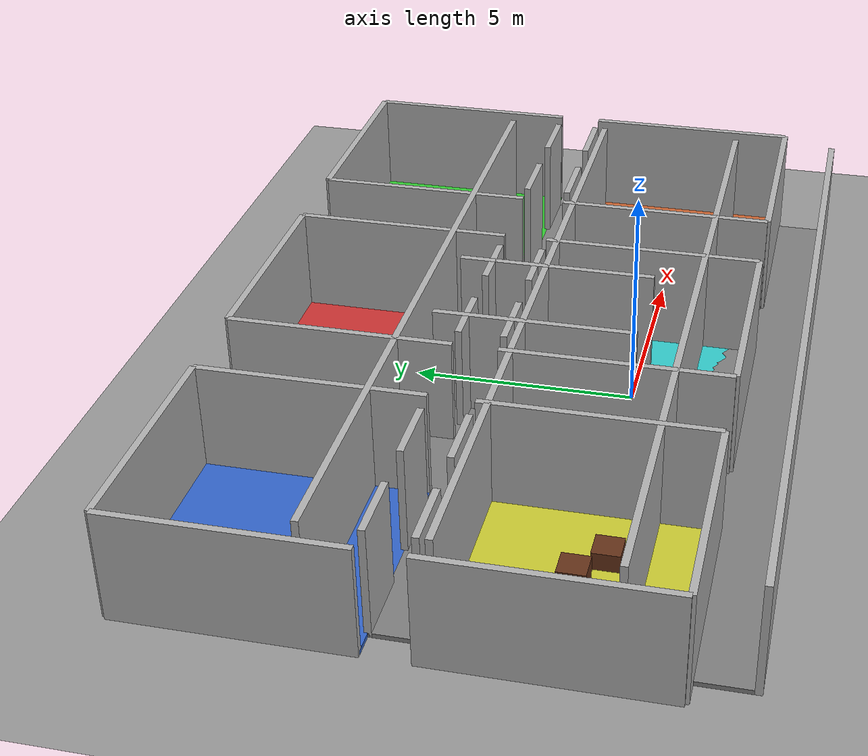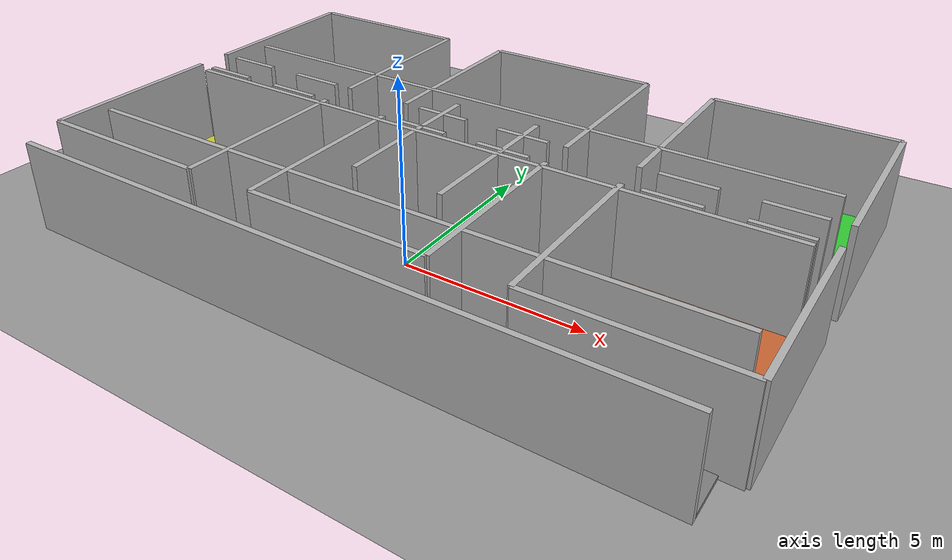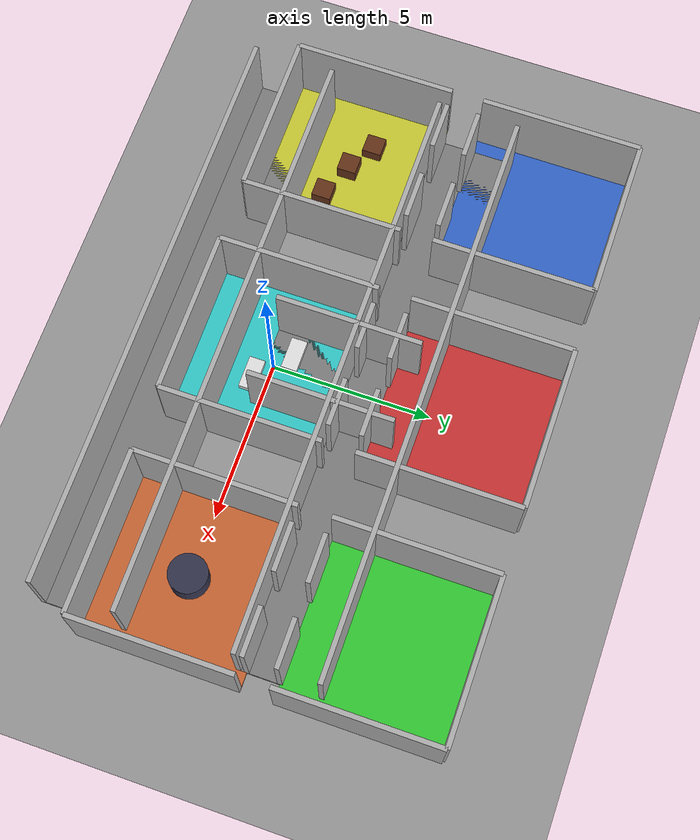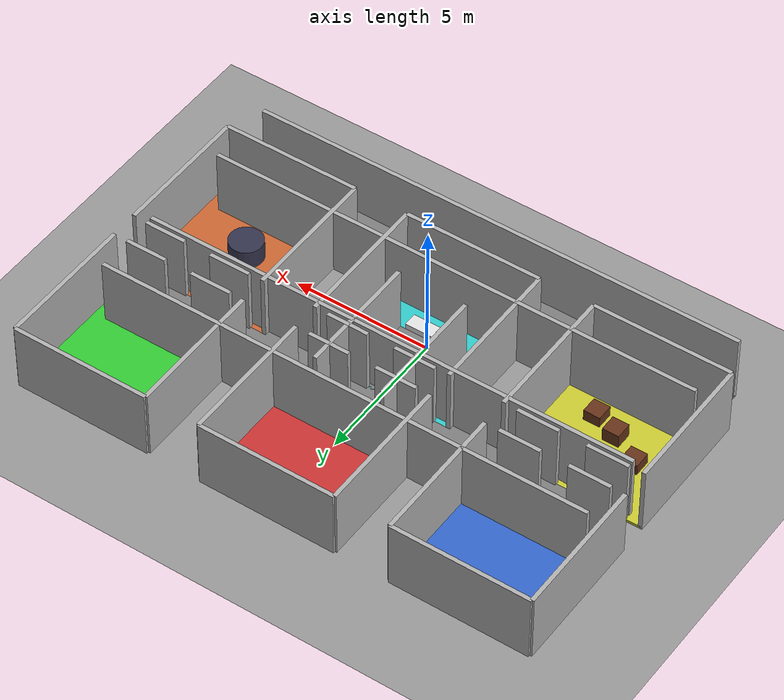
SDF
<?xml version="1.0" ?>
<sdf version="1.7">
  <world name="spacecraft_clean">

    <!-- ====== BRIGHT LIGHTING ====== -->

    <light name="sun" type="directional">
      <pose>0 0 10 0 0 0</pose>
      <direction>0 -0.3 -1</direction>
      <diffuse>1 1 1 1</diffuse>
      <specular>0.8 0.8 0.8 1</specular>
      <cast_shadows>false</cast_shadows>
    </light>

    <light name="overhead" type="point">
      <pose>0 3 8 0 0 0</pose>
      <diffuse>1 1 1 1</diffuse>
      <specular>0.5 0.5 0.5 1</specular>
      <attenuation>
        <range>30</range>
        <constant>0.2</constant>
        <linear>0.01</linear>
        <quadratic>0.001</quadratic>
      </attenuation>
    </light>

    <light name="top_light" type="point">
      <pose>0 0 12 0 0 0</pose>
      <diffuse>1 1 1 1</diffuse>
      <specular>0.5 0.5 0.5 1</specular>
      <attenuation>
        <range>25</range>
        <constant>0.1</constant>
        <linear>0.01</linear>
        <quadratic>0.001</quadratic>
      </attenuation>
    </light>

    <!-- ====== GRAY GROUND ====== -->

    <model name="ground_plane">
      <static>true</static>
      <link name="link">
        <visual name="visual">
          <geometry>
            <plane><normal>0 0 1</normal><size>30 30</size></plane>
          </geometry>
          <material>
            <ambient>0.5 0.5 0.5 1</ambient>
            <diffuse>0.6 0.6 0.6 1</diffuse>
          </material>
        </visual>
        <collision name="collision">
          <geometry>
            <plane><normal>0 0 1</normal><size>30 30</size></plane>
          </geometry>
        </collision>
      </link>
    </model>

    <!-- ====== ROOMS (NO ROOFS) ====== -->

    <!-- COMMAND MODULE (Top-Left - Blue) -->
    <model name="command_module">
      <static>true</static>
      <pose>-7 6 0 0 0 0</pose>
      <link name="wall_left">
        <pose>-2.5 0 1.25 0 0 0</pose>
        <visual name="visual">
          <geometry><box><size>0.15 5 2.5</size></box></geometry>
          <material><ambient>0.7 0.7 0.7 1</ambient><diffuse>0.7 0.7 0.7 1</diffuse></material>
        </visual>
        <collision name="collision">
          <geometry><box><size>0.15 5 2.5</size></box></geometry>
        </collision>
      </link>
      <link name="wall_right">
        <pose>2.5 0 1.25 0 0 0</pose>
        <visual name="visual">
          <geometry><box><size>0.15 5 2.5</size></box></geometry>
          <material><ambient>0.7 0.7 0.7 1</ambient><diffuse>0.7 0.7 0.7 1</diffuse></material>
        </visual>
        <collision name="collision">
          <geometry><box><size>0.15 5 2.5</size></box></geometry>
        </collision>
      </link>
      <link name="wall_top">
        <pose>0 2.5 1.25 0 0 0</pose>
        <visual name="visual">
          <geometry><box><size>5 0.15 2.5</size></box></geometry>
          <material><ambient>0.7 0.7 0.7 1</ambient><diffuse>0.7 0.7 0.7 1</diffuse></material>
        </visual>
        <collision name="collision">
          <geometry><box><size>5 0.15 2.5</size></box></geometry>
        </collision>
      </link>
      <link name="wall_bottom_left">
        <pose>-1.25 -2.5 1.25 0 0 0</pose>
        <visual name="visual">
          <geometry><box><size>1.5 0.15 2.5</size></box></geometry>
          <material><ambient>0.7 0.7 0.7 1</ambient><diffuse>0.7 0.7 0.7 1</diffuse></material>
        </visual>
        <collision name="collision">
          <geometry><box><size>1.5 0.15 2.5</size></box></geometry>
        </collision>
      </link>
      <link name="wall_bottom_right">
        <pose>1.25 -2.5 1.25 0 0 0</pose>
        <visual name="visual">
          <geometry><box><size>1.5 0.15 2.5</size></box></geometry>
          <material><ambient>0.7 0.7 0.7 1</ambient><diffuse>0.7 0.7 0.7 1</diffuse></material>
        </visual>
        <collision name="collision">
          <geometry><box><size>1.5 0.15 2.5</size></box></geometry>
        </collision>
      </link>
      <link name="floor">
        <pose>0 0 0.05 0 0 0</pose>
        <visual name="visual">
          <geometry><box><size>5 5 0.1</size></box></geometry>
          <material><ambient>0.2 0.4 0.8 1</ambient><diffuse>0.2 0.4 0.8 1</diffuse></material>
        </visual>
        <collision name="collision">
          <geometry><box><size>5 5 0.1</size></box></geometry>
        </collision>
      </link>
    </model>

    <!-- SLEEPING QUARTERS (Top-Center - Red) -->
    <model name="sleeping_quarters">
      <static>true</static>
      <pose>0 6 0 0 0 0</pose>
      <link name="wall_left">
        <pose>-2.5 0 1.25 0 0 0</pose>
        <visual name="visual">
          <geometry><box><size>0.15 5 2.5</size></box></geometry>
          <material><ambient>0.7 0.7 0.7 1</ambient><diffuse>0.7 0.7 0.7 1</diffuse></material>
        </visual>
        <collision name="collision">
          <geometry><box><size>0.15 5 2.5</size></box></geometry>
        </collision>
      </link>
      <link name="wall_right">
        <pose>2.5 0 1.25 0 0 0</pose>
        <visual name="visual">
          <geometry><box><size>0.15 5 2.5</size></box></geometry>
          <material><ambient>0.7 0.7 0.7 1</ambient><diffuse>0.7 0.7 0.7 1</diffuse></material>
        </visual>
        <collision name="collision">
          <geometry><box><size>0.15 5 2.5</size></box></geometry>
        </collision>
      </link>
      <link name="wall_top">
        <pose>0 2.5 1.25 0 0 0</pose>
        <visual name="visual">
          <geometry><box><size>5 0.15 2.5</size></box></geometry>
          <material><ambient>0.7 0.7 0.7 1</ambient><diffuse>0.7 0.7 0.7 1</diffuse></material>
        </visual>
        <collision name="collision">
          <geometry><box><size>5 0.15 2.5</size></box></geometry>
        </collision>
      </link>
      <link name="wall_bottom_left">
        <pose>-1.25 -2.5 1.25 0 0 0</pose>
        <visual name="visual">
          <geometry><box><size>1.5 0.15 2.5</size></box></geometry>
          <material><ambient>0.7 0.7 0.7 1</ambient><diffuse>0.7 0.7 0.7 1</diffuse></material>
        </visual>
        <collision name="collision">
          <geometry><box><size>1.5 0.15 2.5</size></box></geometry>
        </collision>
      </link>
      <link name="wall_bottom_right">
        <pose>1.25 -2.5 1.25 0 0 0</pose>
        <visual name="visual">
          <geometry><box><size>1.5 0.15 2.5</size></box></geometry>
          <material><ambient>0.7 0.7 0.7 1</ambient><diffuse>0.7 0.7 0.7 1</diffuse></material>
        </visual>
        <collision name="collision">
          <geometry><box><size>1.5 0.15 2.5</size></box></geometry>
        </collision>
      </link>
      <link name="floor">
        <pose>0 0 0.05 0 0 0</pose>
        <visual name="visual">
          <geometry><box><size>5 5 0.1</size></box></geometry>
          <material><ambient>0.8 0.2 0.2 1</ambient><diffuse>0.8 0.2 0.2 1</diffuse></material>
        </visual>
        <collision name="collision">
          <geometry><box><size>5 5 0.1</size></box></geometry>
        </collision>
      </link>
    </model>

    <!-- AIRLOCK (Top-Right - Green) -->
    <model name="airlock">
      <static>true</static>
      <pose>7 6 0 0 0 0</pose>
      <link name="wall_left">
        <pose>-2.5 0 1.25 0 0 0</pose>
        <visual name="visual">
          <geometry><box><size>0.15 5 2.5</size></box></geometry>
          <material><ambient>0.7 0.7 0.7 1</ambient><diffuse>0.7 0.7 0.7 1</diffuse></material>
        </visual>
        <collision name="collision">
          <geometry><box><size>0.15 5 2.5</size></box></geometry>
        </collision>
      </link>
      <link name="wall_right">
        <pose>2.5 0 1.25 0 0 0</pose>
        <visual name="visual">
          <geometry><box><size>0.15 5 2.5</size></box></geometry>
          <material><ambient>0.7 0.7 0.7 1</ambient><diffuse>0.7 0.7 0.7 1</diffuse></material>
        </visual>
        <collision name="collision">
          <geometry><box><size>0.15 5 2.5</size></box></geometry>
        </collision>
      </link>
      <link name="wall_top">
        <pose>0 2.5 1.25 0 0 0</pose>
        <visual name="visual">
          <geometry><box><size>5 0.15 2.5</size></box></geometry>
          <material><ambient>0.7 0.7 0.7 1</ambient><diffuse>0.7 0.7 0.7 1</diffuse></material>
        </visual>
        <collision name="collision">
          <geometry><box><size>5 0.15 2.5</size></box></geometry>
        </collision>
      </link>
      <link name="wall_bottom_left">
        <pose>-1.25 -2.5 1.25 0 0 0</pose>
        <visual name="visual">
          <geometry><box><size>1.5 0.15 2.5</size></box></geometry>
          <material><ambient>0.7 0.7 0.7 1</ambient><diffuse>0.7 0.7 0.7 1</diffuse></material>
        </visual>
        <collision name="collision">
          <geometry><box><size>1.5 0.15 2.5</size></box></geometry>
        </collision>
      </link>
      <link name="wall_bottom_right">
        <pose>1.25 -2.5 1.25 0 0 0</pose>
        <visual name="visual">
          <geometry><box><size>1.5 0.15 2.5</size></box></geometry>
          <material><ambient>0.7 0.7 0.7 1</ambient><diffuse>0.7 0.7 0.7 1</diffuse></material>
        </visual>
        <collision name="collision">
          <geometry><box><size>1.5 0.15 2.5</size></box></geometry>
        </collision>
      </link>
      <link name="floor">
        <pose>0 0 0.05 0 0 0</pose>
        <visual name="visual">
          <geometry><box><size>5 5 0.1</size></box></geometry>
          <material><ambient>0.2 0.8 0.2 1</ambient><diffuse>0.2 0.8 0.2 1</diffuse></material>
        </visual>
        <collision name="collision">
          <geometry><box><size>5 5 0.1</size></box></geometry>
        </collision>
      </link>
    </model>

    <!-- TOP CORRIDOR -->
    <model name="corridor_top">
      <static>true</static>
      <pose>0 3.5 0 0 0 0</pose>
      <link name="wall_top">
        <pose>0 1.25 1.25 0 0 0</pose>
        <visual name="visual">
          <geometry><box><size>18 0.15 2.5</size></box></geometry>
          <material><ambient>0.7 0.7 0.7 1</ambient><diffuse>0.7 0.7 0.7 1</diffuse></material>
        </visual>
        <collision name="collision">
          <geometry><box><size>18 0.15 2.5</size></box></geometry>
        </collision>
      </link>
      <link name="wall_bottom">
        <pose>0 -1.25 1.25 0 0 0</pose>
        <visual name="visual">
          <geometry><box><size>18 0.15 2.5</size></box></geometry>
          <material><ambient>0.7 0.7 0.7 1</ambient><diffuse>0.7 0.7 0.7 1</diffuse></material>
        </visual>
        <collision name="collision">
          <geometry><box><size>18 0.15 2.5</size></box></geometry>
        </collision>
      </link>
      <link name="floor">
        <pose>0 0 0.05 0 0 0</pose>
        <visual name="visual">
          <geometry><box><size>18 2.5 0.1</size></box></geometry>
          <material><ambient>0.5 0.5 0.5 1</ambient><diffuse>0.5 0.5 0.5 1</diffuse></material>
        </visual>
        <collision name="collision">
          <geometry><box><size>18 2.5 0.1</size></box></geometry>
        </collision>
      </link>
    </model>

    <!-- CARGO BAY (Bottom-Left - Yellow) -->
    <model name="cargo_bay">
      <static>true</static>
      <pose>-7 0 0 0 0 0</pose>
      <link name="wall_left">
        <pose>-2.5 0 1.25 0 0 0</pose>
        <visual name="visual">
          <geometry><box><size>0.15 5 2.5</size></box></geometry>
          <material><ambient>0.7 0.7 0.7 1</ambient><diffuse>0.7 0.7 0.7 1</diffuse></material>
        </visual>
        <collision name="collision">
          <geometry><box><size>0.15 5 2.5</size></box></geometry>
        </collision>
      </link>
      <link name="wall_right">
        <pose>2.5 0 1.25 0 0 0</pose>
        <visual name="visual">
          <geometry><box><size>0.15 5 2.5</size></box></geometry>
          <material><ambient>0.7 0.7 0.7 1</ambient><diffuse>0.7 0.7 0.7 1</diffuse></material>
        </visual>
        <collision name="collision">
          <geometry><box><size>0.15 5 2.5</size></box></geometry>
        </collision>
      </link>
      <link name="wall_top_left">
        <pose>-1.25 2.5 1.25 0 0 0</pose>
        <visual name="visual">
          <geometry><box><size>1.5 0.15 2.5</size></box></geometry>
          <material><ambient>0.7 0.7 0.7 1</ambient><diffuse>0.7 0.7 0.7 1</diffuse></material>
        </visual>
        <collision name="collision">
          <geometry><box><size>1.5 0.15 2.5</size></box></geometry>
        </collision>
      </link>
      <link name="wall_top_right">
        <pose>1.25 2.5 1.25 0 0 0</pose>
        <visual name="visual">
          <geometry><box><size>1.5 0.15 2.5</size></box></geometry>
          <material><ambient>0.7 0.7 0.7 1</ambient><diffuse>0.7 0.7 0.7 1</diffuse></material>
        </visual>
        <collision name="collision">
          <geometry><box><size>1.5 0.15 2.5</size></box></geometry>
        </collision>
      </link>
      <link name="wall_bottom">
        <pose>0 -2.5 1.25 0 0 0</pose>
        <visual name="visual">
          <geometry><box><size>5 0.15 2.5</size></box></geometry>
          <material><ambient>0.7 0.7 0.7 1</ambient><diffuse>0.7 0.7 0.7 1</diffuse></material>
        </visual>
        <collision name="collision">
          <geometry><box><size>5 0.15 2.5</size></box></geometry>
        </collision>
      </link>
      <link name="floor">
        <pose>0 0 0.05 0 0 0</pose>
        <visual name="visual">
          <geometry><box><size>5 5 0.1</size></box></geometry>
          <material><ambient>0.8 0.8 0.2 1</ambient><diffuse>0.8 0.8 0.2 1</diffuse></material>
        </visual>
        <collision name="collision">
          <geometry><box><size>5 5 0.1</size></box></geometry>
        </collision>
      </link>
    </model>

    <!-- CARGO OBSTACLES -->
    <model name="crate1">
      <static>true</static>
      <pose>-8 0.5 0.25 0 0 0</pose>
      <link name="crate">
        <visual name="visual">
          <geometry><box><size>0.6 0.6 0.5</size></box></geometry>
          <material><ambient>0.4 0.2 0.1 1</ambient><diffuse>0.4 0.2 0.1 1</diffuse></material>
        </visual>
        <collision name="collision">
          <geometry><box><size>0.6 0.6 0.5</size></box></geometry>
        </collision>
      </link>
    </model>

    <model name="crate2">
      <static>true</static>
      <pose>-6 -0.5 0.25 0 0 0</pose>
      <link name="crate">
        <visual name="visual">
          <geometry><box><size>0.6 0.6 0.5</size></box></geometry>
          <material><ambient>0.4 0.2 0.1 1</ambient><diffuse>0.4 0.2 0.1 1</diffuse></material>
        </visual>
        <collision name="collision">
          <geometry><box><size>0.6 0.6 0.5</size></box></geometry>
        </collision>
      </link>
    </model>

    <model name="crate3">
      <static>true</static>
      <pose>-7 0 0.5 0 0 0</pose>
      <link name="crate">
        <visual name="visual">
          <geometry><box><size>0.6 0.6 0.5</size></box></geometry>
          <material><ambient>0.4 0.2 0.1 1</ambient><diffuse>0.4 0.2 0.1 1</diffuse></material>
        </visual>
        <collision name="collision">
          <geometry><box><size>0.6 0.6 0.5</size></box></geometry>
        </collision>
      </link>
    </model>

    <!-- MEDICAL BAY (Bottom-Center - Cyan) -->
    <model name="medical_bay">
      <static>true</static>
      <pose>0 0 0 0 0 0</pose>
      <link name="wall_left">
        <pose>-2.5 0 1.25 0 0 0</pose>
        <visual name="visual">
          <geometry><box><size>0.15 5 2.5</size></box></geometry>
          <material><ambient>0.7 0.7 0.7 1</ambient><diffuse>0.7 0.7 0.7 1</diffuse></material>
        </visual>
        <collision name="collision">
          <geometry><box><size>0.15 5 2.5</size></box></geometry>
        </collision>
      </link>
      <link name="wall_right">
        <pose>2.5 0 1.25 0 0 0</pose>
        <visual name="visual">
          <geometry><box><size>0.15 5 2.5</size></box></geometry>
          <material><ambient>0.7 0.7 0.7 1</ambient><diffuse>0.7 0.7 0.7 1</diffuse></material>
        </visual>
        <collision name="collision">
          <geometry><box><size>0.15 5 2.5</size></box></geometry>
        </collision>
      </link>
      <link name="wall_top_left">
        <pose>-1.25 2.5 1.25 0 0 0</pose>
        <visual name="visual">
          <geometry><box><size>1.5 0.15 2.5</size></box></geometry>
          <material><ambient>0.7 0.7 0.7 1</ambient><diffuse>0.7 0.7 0.7 1</diffuse></material>
        </visual>
        <collision name="collision">
          <geometry><box><size>1.5 0.15 2.5</size></box></geometry>
        </collision>
      </link>
      <link name="wall_top_right">
        <pose>1.25 2.5 1.25 0 0 0</pose>
        <visual name="visual">
          <geometry><box><size>1.5 0.15 2.5</size></box></geometry>
          <material><ambient>0.7 0.7 0.7 1</ambient><diffuse>0.7 0.7 0.7 1</diffuse></material>
        </visual>
        <collision name="collision">
          <geometry><box><size>1.5 0.15 2.5</size></box></geometry>
        </collision>
      </link>
      <link name="wall_bottom">
        <pose>0 -2.5 1.25 0 0 0</pose>
        <visual name="visual">
          <geometry><box><size>5 0.15 2.5</size></box></geometry>
          <material><ambient>0.7 0.7 0.7 1</ambient><diffuse>0.7 0.7 0.7 1</diffuse></material>
        </visual>
        <collision name="collision">
          <geometry><box><size>5 0.15 2.5</size></box></geometry>
        </collision>
      </link>
      <link name="floor">
        <pose>0 0 0.05 0 0 0</pose>
        <visual name="visual">
          <geometry><box><size>5 5 0.1</size></box></geometry>
          <material><ambient>0.2 0.8 0.8 1</ambient><diffuse>0.2 0.8 0.8 1</diffuse></material>
        </visual>
        <collision name="collision">
          <geometry><box><size>5 5 0.1</size></box></geometry>
        </collision>
      </link>
    </model>

    <!-- MEDICAL EQUIPMENT -->
    <model name="hospital_bed1">
      <static>true</static>
      <pose>-0.5 0.5 0.15 0 0 0</pose>
      <link name="bed">
        <visual name="visual">
          <geometry><box><size>1 0.5 0.3</size></box></geometry>
          <material><ambient>0.9 0.9 0.9 1</ambient><diffuse>0.9 0.9 0.9 1</diffuse></material>
        </visual>
        <collision name="collision">
          <geometry><box><size>1 0.5 0.3</size></box></geometry>
        </collision>
      </link>
    </model>

    <model name="hospital_bed2">
      <static>true</static>
      <pose>0.5 -0.5 0.15 0 0 0</pose>
      <link name="bed">
        <visual name="visual">
          <geometry><box><size>1 0.5 0.3</size></box></geometry>
          <material><ambient>0.9 0.9 0.9 1</ambient><diffuse>0.9 0.9 0.9 1</diffuse></material>
        </visual>
        <collision name="collision">
          <geometry><box><size>1 0.5 0.3</size></box></geometry>
        </collision>
      </link>
    </model>

    <!-- ENGINE ROOM (Bottom-Right - Orange) -->
    <model name="engine_room">
      <static>true</static>
      <pose>7 0 0 0 0 0</pose>
      <link name="wall_left">
        <pose>-2.5 0 1.25 0 0 0</pose>
        <visual name="visual">
          <geometry><box><size>0.15 5 2.5</size></box></geometry>
          <material><ambient>0.7 0.7 0.7 1</ambient><diffuse>0.7 0.7 0.7 1</diffuse></material>
        </visual>
        <collision name="collision">
          <geometry><box><size>0.15 5 2.5</size></box></geometry>
        </collision>
      </link>
      <link name="wall_right">
        <pose>2.5 0 1.25 0 0 0</pose>
        <visual name="visual">
          <geometry><box><size>0.15 5 2.5</size></box></geometry>
          <material><ambient>0.7 0.7 0.7 1</ambient><diffuse>0.7 0.7 0.7 1</diffuse></material>
        </visual>
        <collision name="collision">
          <geometry><box><size>0.15 5 2.5</size></box></geometry>
        </collision>
      </link>
      <link name="wall_top_left">
        <pose>-1.25 2.5 1.25 0 0 0</pose>
        <visual name="visual">
          <geometry><box><size>1.5 0.15 2.5</size></box></geometry>
          <material><ambient>0.7 0.7 0.7 1</ambient><diffuse>0.7 0.7 0.7 1</diffuse></material>
        </visual>
        <collision name="collision">
          <geometry><box><size>1.5 0.15 2.5</size></box></geometry>
        </collision>
      </link>
      <link name="wall_top_right">
        <pose>1.25 2.5 1.25 0 0 0</pose>
        <visual name="visual">
          <geometry><box><size>1.5 0.15 2.5</size></box></geometry>
          <material><ambient>0.7 0.7 0.7 1</ambient><diffuse>0.7 0.7 0.7 1</diffuse></material>
        </visual>
        <collision name="collision">
          <geometry><box><size>1.5 0.15 2.5</size></box></geometry>
        </collision>
      </link>
      <link name="wall_bottom">
        <pose>0 -2.5 1.25 0 0 0</pose>
        <visual name="visual">
          <geometry><box><size>5 0.15 2.5</size></box></geometry>
          <material><ambient>0.7 0.7 0.7 1</ambient><diffuse>0.7 0.7 0.7 1</diffuse></material>
        </visual>
        <collision name="collision">
          <geometry><box><size>5 0.15 2.5</size></box></geometry>
        </collision>
      </link>
      <link name="floor">
        <pose>0 0 0.05 0 0 0</pose>
        <visual name="visual">
          <geometry><box><size>5 5 0.1</size></box></geometry>
          <material><ambient>0.8 0.4 0.2 1</ambient><diffuse>0.8 0.4 0.2 1</diffuse></material>
        </visual>
        <collision name="collision">
          <geometry><box><size>5 5 0.1</size></box></geometry>
        </collision>
      </link>
    </model>

    <!-- ENGINE MACHINERY -->
    <model name="engine_machine">
      <static>true</static>
      <pose>7 0 0.4 0 0 0</pose>
      <link name="machine">
        <visual name="visual">
          <geometry><cylinder><radius>0.6</radius><length>0.8</length></cylinder></geometry>
          <material><ambient>0.2 0.2 0.3 1</ambient><diffuse>0.2 0.2 0.3 1</diffuse></material>
        </visual>
        <collision name="collision">
          <geometry><cylinder><radius>0.6</radius><length>0.8</length></cylinder></geometry>
        </collision>
      </link>
    </model>

    <!-- BOTTOM CORRIDOR -->
    <model name="corridor_bottom">
      <static>true</static>
      <pose>0 -2.5 0 0 0 0</pose>
      <link name="wall_top">
        <pose>0 1.25 1.25 0 0 0</pose>
        <visual name="visual">
          <geometry><box><size>18 0.15 2.5</size></box></geometry>
          <material><ambient>0.7 0.7 0.7 1</ambient><diffuse>0.7 0.7 0.7 1</diffuse></material>
        </visual>
        <collision name="collision">
          <geometry><box><size>18 0.15 2.5</size></box></geometry>
        </collision>
      </link>
      <link name="wall_bottom">
        <pose>0 -1.25 1.25 0 0 0</pose>
        <visual name="visual">
          <geometry><box><size>18 0.15 2.5</size></box></geometry>
          <material><ambient>0.7 0.7 0.7 1</ambient><diffuse>0.7 0.7 0.7 1</diffuse></material>
        </visual>
        <collision name="collision">
          <geometry><box><size>18 0.15 2.5</size></box></geometry>
        </collision>
      </link>
      <link name="floor">
        <pose>0 0 0.05 0 0 0</pose>
        <visual name="visual">
          <geometry><box><size>18 2.5 0.1</size></box></geometry>
          <material><ambient>0.5 0.5 0.5 1</ambient><diffuse>0.5 0.5 0.5 1</diffuse></material>
        </visual>
        <collision name="collision">
          <geometry><box><size>18 2.5 0.1</size></box></geometry>
        </collision>
      </link>
    </model>

    <!-- VERTICAL CORRIDOR -->
    <model name="corridor_vertical">
      <static>true</static>
      <pose>0 2 0 0 0 0</pose>
      <link name="wall_left">
        <pose>-1.25 0 1.25 0 0 0</pose>
        <visual name="visual">
          <geometry><box><size>0.15 4.5 2.5</size></box></geometry>
          <material><ambient>0.7 0.7 0.7 1</ambient><diffuse>0.7 0.7 0.7 1</diffuse></material>
        </visual>
        <collision name="collision">
          <geometry><box><size>0.15 4.5 2.5</size></box></geometry>
        </collision>
      </link>
      <link name="wall_right">
        <pose>1.25 0 1.25 0 0 0</pose>
        <visual name="visual">
          <geometry><box><size>0.15 4.5 2.5</size></box></geometry>
          <material><ambient>0.7 0.7 0.7 1</ambient><diffuse>0.7 0.7 0.7 1</diffuse></material>
        </visual>
        <collision name="collision">
          <geometry><box><size>0.15 4.5 2.5</size></box></geometry>
        </collision>
      </link>
      <link name="floor">
        <pose>0 0 0.05 0 0 0</pose>
        <visual name="visual">
          <geometry><box><size>2.5 4.5 0.1</size></box></geometry>
          <material><ambient>0.5 0.5 0.5 1</ambient><diffuse>0.5 0.5 0.5 1</diffuse></material>
        </visual>
        <collision name="collision">
          <geometry><box><size>2.5 4.5 0.1</size></box></geometry>
        </collision>
      </link>
    </model>

  </world>
</sdf>
